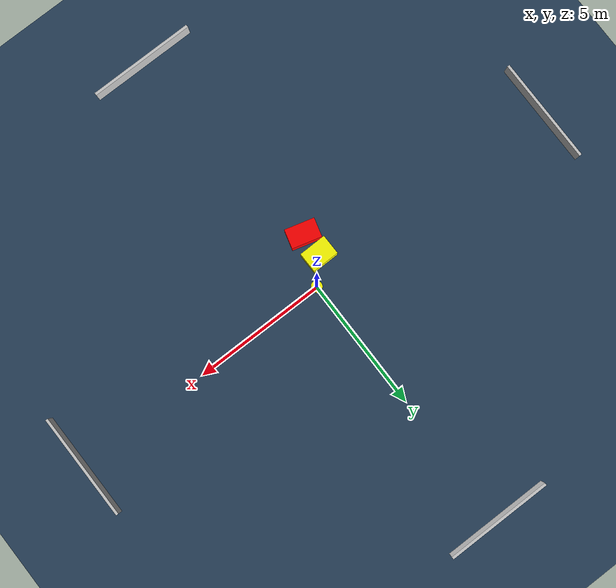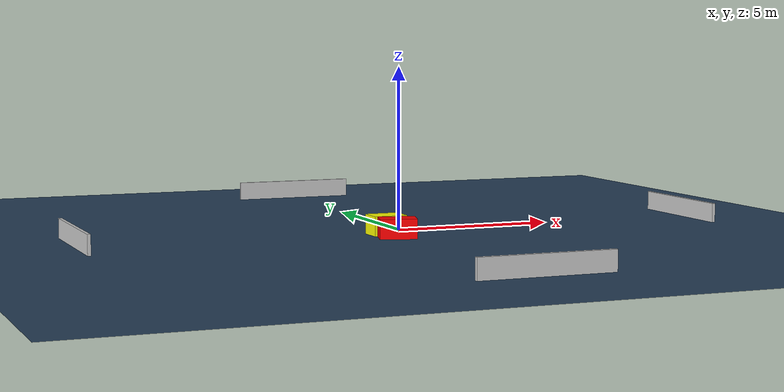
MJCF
<?xml version="1.0" ?>
<mujoco model="generated_environment">
  <option timestep="0.01" integrator="RK4" cone="elliptic"/>
  <default>
    <geom density="1"/>
  </default>
  <asset>
    <texture builtin="gradient" height="3072" name="skybox" rgb1="0.3 0.5 0.7" rgb2="0 0 0" type="skybox" width="512"/>
    <texture builtin="checker" height="300" name="groundplane" rgb1="0.2 0.3 0.4" rgb2="0.1 0.2 0.3" type="2d" width="300"/>
    <material name="groundplane" reflectance="0.2" texrepeat="5 5" texture="groundplane"/>
  </asset>
  <worldbody>
    <light dir="0 0 -1" directional="true" pos="0 0 1.5"/>
    <geom condim="3" friction="0.5 0.005 0.001" material="groundplane" name="floor" pos="0 0 0" size="0 0 0.05" type="plane"/>
    <body name="walls">
      <geom name="wall_1" condim="4" pos="-10.0 0.0 0.3" rgba="0.800000011920929 0.800000011920929 0.800000011920929 1.0" size="0.05 2.0 0.3" type="box"/>
      <geom name="wall_2" condim="4" pos="10.0 0.0 0.3" rgba="0.800000011920929 0.800000011920929 0.800000011920929 1.0" size="0.05 2.0 0.3" type="box"/>
      <geom name="wall_3" condim="4" pos="0.0 -10.0 0.3" rgba="0.800000011920929 0.800000011920929 0.800000011920929 1.0" size="2.0 0.05 0.3" type="box"/>
      <geom name="wall_4" condim="4" pos="0.0 10.0 0.3" rgba="0.800000011920929 0.800000011920929 0.800000011920929 1.0" size="2.0 0.05 0.3" type="box"/>
    </body>
    <body name="robot">
      <joint name="joint_x" type="slide" pos="0 0 0" axis="1 0 0"/>
      <joint name="joint_y" type="slide" pos="0 0 0" axis="0 1 0"/>
      <geom name="robot" type="cylinder" pos="0.0 0.0 0.2" size="0.2 0.2 0.0" mass="5.0" friction="1.0 0.005 0.0001" condim="4" rgba="1.0 1.0 0.0 1.0"/>
    </body>
    <body name="obstacle_1_movable">
      <geom name="obstacle_1_movable" condim="4" pos="-0.7419013366753666 -0.8304777675326244 0.3" euler="0 0 180.7089265135476" friction="0.0 0.005 0.001" rgba="1.0 1.0 0.0 1.0" size="0.514236399062264 0.37574479236017283 0.3" type="box" mass="0.1"/>
      <joint type="free"/>
    </body>
    <body name="obstacle_2_static">
      <geom name="obstacle_2_static" condim="4" pos="-0.7403816123894734 -1.7231294215845692 0.3" euler="0 0 344.7449922776414" friction="0.0 0.005 0.001" rgba="1.0 0.0 0.0 1.0" size="0.5572161165258585 0.3557121660198528 0.3" type="box"/>
    </body>
  </worldbody>
  <actuator>
    <motor name="actuator_x" joint="joint_x" gear="1" ctrlrange="-1 1"/>
    <motor name="actuator_y" joint="joint_y" gear="1" ctrlrange="-1 1"/>
  </actuator>
</mujoco>
